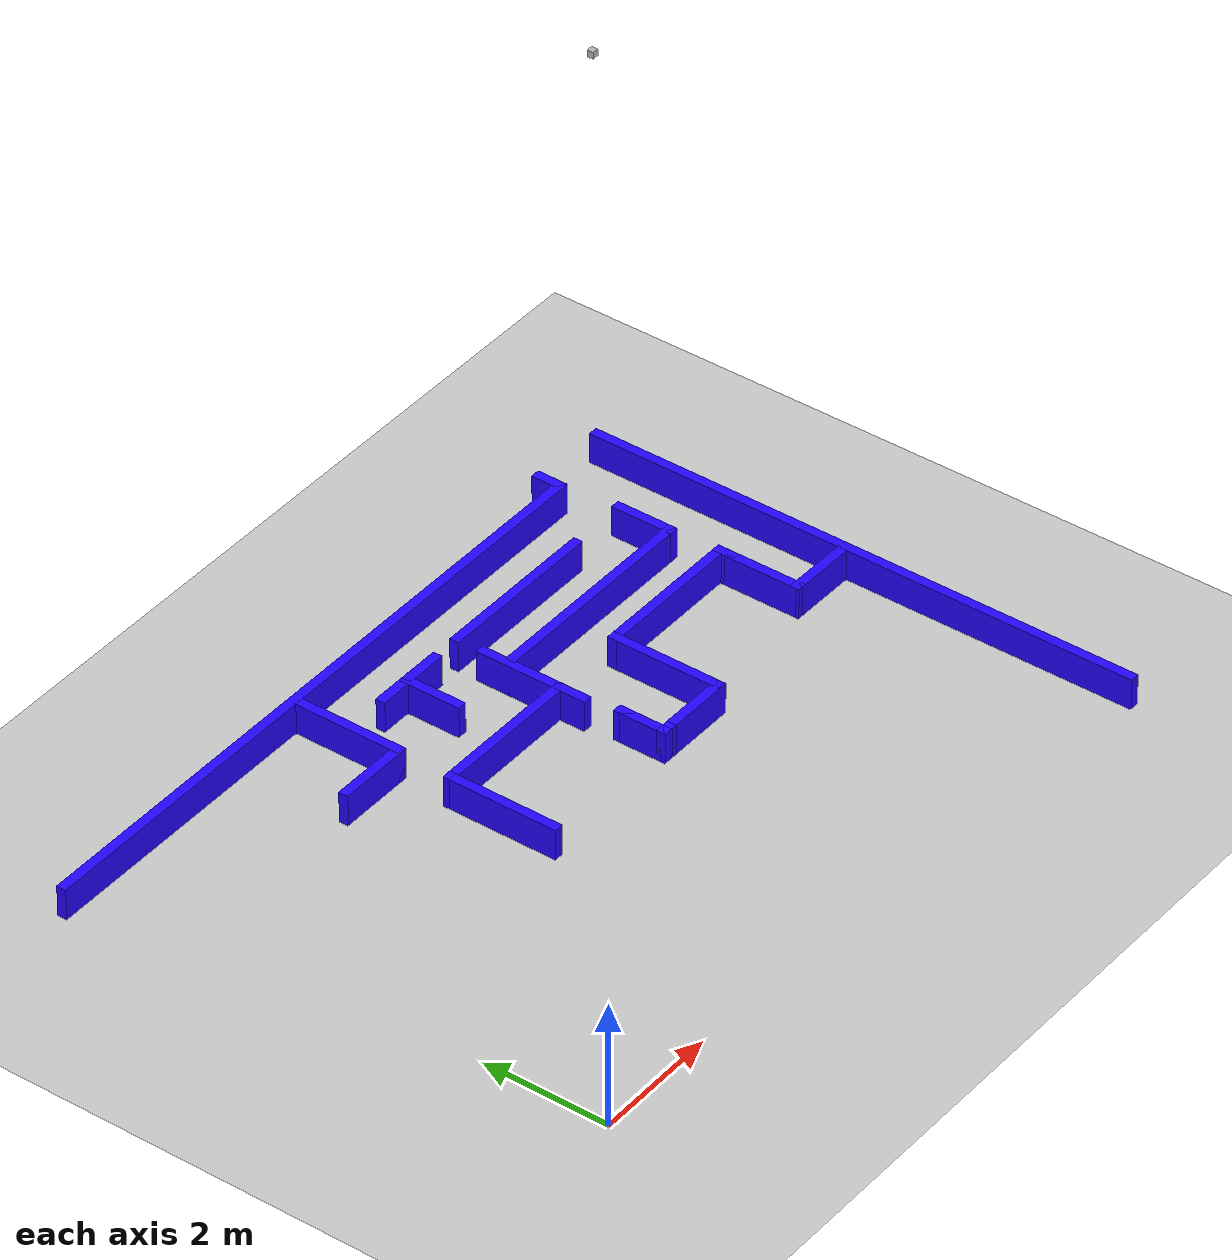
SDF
<sdf version="1.7">
 <world name="default">
  <model name="ground_plane">
   <static>1</static>
   <link name="link">
    <collision name="collision">
     <geometry><plane><normal>0 0 1</normal><size>100 100</size></plane></geometry>
     <surface><friction><ode><mu>100</mu><mu2>50</mu2></ode></friction></surface>
    </collision>
    <visual name="visual">
     <cast_shadows>0</cast_shadows>
     <geometry><plane><normal>0 0 1</normal><size>100 100</size></plane></geometry>
     <material>
      <script><uri>file://media/materials/scripts/gazebo.material</uri><name>Gazebo/Grey</name></script>
     </material>
    </visual>
   </link>
  </model>
  <model name="camera_map">
   <pose>5 4 12 0 1.57 1.57</pose>
   <link name="link">
    <inertial>
     <mass>0.1</mass>
     <inertia>
      <ixx>0.000166667</ixx>
      <iyy>0.000166667</iyy>
      <izz>0.000166667</izz>
      <ixy>0</ixy>
      <ixz>0</ixz>
      <iyz>0</iyz>
     </inertia>
    </inertial>
    <collision name="collision"><geometry><box><size>0.1 0.1 0.1</size></box></geometry></collision>
    <visual name="visual"><geometry><box><size>0.1 0.1 0.1</size></box></geometry></visual>
    <sensor name="camera_map" type="camera">
     <camera>
      <horizontal_fov>1.047</horizontal_fov>
      <image><width>320</width><height>240</height></image>
      <clip><near>0.1</near><far>100</far></clip>
     </camera>
     <always_on>1</always_on>
     <update_rate>30</update_rate>
     <visualize>1</visualize>
     <plugin name="camera_controller" filename="libgazebo_ros_camera.so">
      <alwaysOn>1</alwaysOn>
      <updateRate>0.0</updateRate>
      <cameraName>camera_map</cameraName>
      <imageTopicName>image_raw</imageTopicName>
      <cameraInfoTopicName>camera_info</cameraInfoTopicName>
      <frameName>camera_link</frameName>
      <hackBaseline>0.07</hackBaseline>
      <distortionK1>0.0</distortionK1>
      <distortionK2>0.0</distortionK2>
      <distortionK3>0.0</distortionK3>
      <distortionT1>0.0</distortionT1>
      <distortionT2>0.0</distortionT2>
     </plugin>
    </sensor>
    <gravity>0</gravity>
   </link>
  </model>
  <model name="maze_blue">
   <link name="Wall_2">
    <pose>-0.6185 4.2775 0 0 -0 0</pose>
    <visual name="Wall_2_Visual">
     <pose>0 0 0.25 0 -0 0</pose>
     <geometry><box><size>10.75 0.15 0.5</size></box></geometry>
     <material>
      <script><uri>file://media/materials/scripts/gazebo.material</uri><name>Gazebo/Grey</name></script>
      <ambient>0.14 0.012 1 1</ambient>
      <shader type="pixel"/>
     </material>
     <meta><layer>0</layer></meta>
    </visual>
    <collision name="Wall_2_Collision">
     <pose>0 0 0.25 0 -0 0</pose>
     <geometry><box><size>10.75 0.15 0.5</size></box></geometry>
     <surface>
      <friction>
       <ode><mu>1</mu><mu2>1</mu2><fdir1>0 0 0</fdir1><slip1>0</slip1><slip2>0</slip2></ode>
       <torsional>
        <coefficient>1</coefficient>
        <patch_radius>0</patch_radius>
        <surface_radius>0</surface_radius>
        <use_patch_radius>1</use_patch_radius>
        <ode><slip>0</slip></ode>
       </torsional>
      </friction>
      <bounce><restitution_coefficient>0</restitution_coefficient><threshold>1e+06</threshold></bounce>
      <contact>
       <collide_without_contact>0</collide_without_contact>
       <collide_without_contact_bitmask>1</collide_without_contact_bitmask>
       <collide_bitmask>1</collide_bitmask>
       <ode>
        <soft_cfm>0</soft_cfm>
        <soft_erp>0.2</soft_erp>
        <kp>1e+13</kp>
        <kd>1</kd>
        <max_vel>0.01</max_vel>
        <min_depth>0</min_depth>
       </ode>
       <bullet>
        <split_impulse>1</split_impulse>
        <split_impulse_penetration_threshold>-0.01</split_impulse_penetration_threshold>
        <soft_cfm>0</soft_cfm>
        <soft_erp>0.2</soft_erp>
        <kp>1e+13</kp>
        <kd>1</kd>
       </bullet>
      </contact>
     </surface>
    </collision>
   </link>
   <link name="Wall_3">
    <pose>4.6815 4.4525 0 0 -0 1.5708</pose>
    <visual name="Wall_3_Visual">
     <pose>0 0 0.25 0 -0 0</pose>
     <geometry><box><size>0.5 0.15 0.5</size></box></geometry>
     <material>
      <script><uri>file://media/materials/scripts/gazebo.material</uri><name>Gazebo/Grey</name></script>
      <ambient>0.14 0.012 1 1</ambient>
      <shader type="pixel"/>
     </material>
     <meta><layer>0</layer></meta>
    </visual>
    <collision name="Wall_3_Collision">
     <pose>0 0 0.25 0 -0 0</pose>
     <geometry><box><size>0.5 0.15 0.5</size></box></geometry>
     <surface>
      <friction>
       <ode><mu>1</mu><mu2>1</mu2><fdir1>0 0 0</fdir1><slip1>0</slip1><slip2>0</slip2></ode>
       <torsional>
        <coefficient>1</coefficient>
        <patch_radius>0</patch_radius>
        <surface_radius>0</surface_radius>
        <use_patch_radius>1</use_patch_radius>
        <ode><slip>0</slip></ode>
       </torsional>
      </friction>
      <bounce><restitution_coefficient>0</restitution_coefficient><threshold>1e+06</threshold></bounce>
      <contact>
       <collide_without_contact>0</collide_without_contact>
       <collide_without_contact_bitmask>1</collide_without_contact_bitmask>
       <collide_bitmask>1</collide_bitmask>
       <ode>
        <soft_cfm>0</soft_cfm>
        <soft_erp>0.2</soft_erp>
        <kp>1e+13</kp>
        <kd>1</kd>
        <max_vel>0.01</max_vel>
        <min_depth>0</min_depth>
       </ode>
       <bullet>
        <split_impulse>1</split_impulse>
        <split_impulse_penetration_threshold>-0.01</split_impulse_penetration_threshold>
        <soft_cfm>0</soft_cfm>
        <soft_erp>0.2</soft_erp>
        <kp>1e+13</kp>
        <kd>1</kd>
       </bullet>
      </contact>
     </surface>
    </collision>
   </link>
   <link name="Wall_40">
    <pose>4.8375 0.9405 0 0 -0 1.5708</pose>
    <visual name="Wall_40_Visual">
     <pose>0 0 0.25 0 -0 0</pose>
     <geometry><box><size>1.25 0.15 0.5</size></box></geometry>
     <material>
      <script><uri>file://media/materials/scripts/gazebo.material</uri><name>Gazebo/Grey</name></script>
      <ambient>0.14 0.012 1 1</ambient>
      <shader type="pixel"/>
     </material>
     <meta><layer>0</layer></meta>
    </visual>
    <collision name="Wall_40_Collision">
     <pose>0 0 0.25 0 -0 0</pose>
     <geometry><box><size>1.25 0.15 0.5</size></box></geometry>
     <surface>
      <friction>
       <ode><mu>1</mu><mu2>1</mu2><fdir1>0 0 0</fdir1><slip1>0</slip1><slip2>0</slip2></ode>
       <torsional>
        <coefficient>1</coefficient>
        <patch_radius>0</patch_radius>
        <surface_radius>0</surface_radius>
        <use_patch_radius>1</use_patch_radius>
        <ode><slip>0</slip></ode>
       </torsional>
      </friction>
      <bounce><restitution_coefficient>0</restitution_coefficient><threshold>1e+06</threshold></bounce>
      <contact>
       <collide_without_contact>0</collide_without_contact>
       <collide_without_contact_bitmask>1</collide_without_contact_bitmask>
       <collide_bitmask>1</collide_bitmask>
       <ode>
        <soft_cfm>0</soft_cfm>
        <soft_erp>0.2</soft_erp>
        <kp>1e+13</kp>
        <kd>1</kd>
        <max_vel>0.01</max_vel>
        <min_depth>0</min_depth>
       </ode>
       <bullet>
        <split_impulse>1</split_impulse>
        <split_impulse_penetration_threshold>-0.01</split_impulse_penetration_threshold>
        <soft_cfm>0</soft_cfm>
        <soft_erp>0.2</soft_erp>
        <kp>1e+13</kp>
        <kd>1</kd>
       </bullet>
      </contact>
     </surface>
    </collision>
   </link>
   <link name="Wall_43">
    <pose>3.6625 1.6905 0 0 -0 3.14159</pose>
    <visual name="Wall_43_Visual">
     <pose>0 0 0.25 0 -0 0</pose>
     <geometry><box><size>2.5 0.15 0.5</size></box></geometry>
     <material>
      <script><uri>file://media/materials/scripts/gazebo.material</uri><name>Gazebo/Grey</name></script>
      <ambient>0.14 0.012 1 1</ambient>
      <shader type="pixel"/>
     </material>
     <meta><layer>0</layer></meta>
    </visual>
    <collision name="Wall_43_Collision">
     <pose>0 0 0.25 0 -0 0</pose>
     <geometry><box><size>2.5 0.15 0.5</size></box></geometry>
     <surface>
      <friction>
       <ode><mu>1</mu><mu2>1</mu2><fdir1>0 0 0</fdir1><slip1>0</slip1><slip2>0</slip2></ode>
       <torsional>
        <coefficient>1</coefficient>
        <patch_radius>0</patch_radius>
        <surface_radius>0</surface_radius>
        <use_patch_radius>1</use_patch_radius>
        <ode><slip>0</slip></ode>
       </torsional>
      </friction>
      <bounce><restitution_coefficient>0</restitution_coefficient><threshold>1e+06</threshold></bounce>
      <contact>
       <collide_without_contact>0</collide_without_contact>
       <collide_without_contact_bitmask>1</collide_without_contact_bitmask>
       <collide_bitmask>1</collide_bitmask>
       <ode>
        <soft_cfm>0</soft_cfm>
        <soft_erp>0.2</soft_erp>
        <kp>1e+13</kp>
        <kd>1</kd>
        <max_vel>0.01</max_vel>
        <min_depth>0</min_depth>
       </ode>
       <bullet>
        <split_impulse>1</split_impulse>
        <split_impulse_penetration_threshold>-0.01</split_impulse_penetration_threshold>
        <soft_cfm>0</soft_cfm>
        <soft_erp>0.2</soft_erp>
        <kp>1e+13</kp>
        <kd>1</kd>
       </bullet>
      </contact>
     </surface>
    </collision>
   </link>
   <link name="Wall_44">
    <pose>2.4875 0.8905 0 0 0 -1.5708</pose>
    <visual name="Wall_44_Visual">
     <pose>0 0 0.25 0 -0 0</pose>
     <geometry><box><size>1.75 0.15 0.5</size></box></geometry>
     <material>
      <script><uri>file://media/materials/scripts/gazebo.material</uri><name>Gazebo/Grey</name></script>
      <ambient>0.14 0.012 1 1</ambient>
      <shader type="pixel"/>
     </material>
     <meta><layer>0</layer></meta>
    </visual>
    <collision name="Wall_44_Collision">
     <pose>0 0 0.25 0 -0 0</pose>
     <geometry><box><size>1.75 0.15 0.5</size></box></geometry>
     <surface>
      <friction>
       <ode><mu>1</mu><mu2>1</mu2><fdir1>0 0 0</fdir1><slip1>0</slip1><slip2>0</slip2></ode>
       <torsional>
        <coefficient>1</coefficient>
        <patch_radius>0</patch_radius>
        <surface_radius>0</surface_radius>
        <use_patch_radius>1</use_patch_radius>
        <ode><slip>0</slip></ode>
       </torsional>
      </friction>
      <bounce><restitution_coefficient>0</restitution_coefficient><threshold>1e+06</threshold></bounce>
      <contact>
       <collide_without_contact>0</collide_without_contact>
       <collide_without_contact_bitmask>1</collide_without_contact_bitmask>
       <collide_bitmask>1</collide_bitmask>
       <ode>
        <soft_cfm>0</soft_cfm>
        <soft_erp>0.2</soft_erp>
        <kp>1e+13</kp>
        <kd>1</kd>
        <max_vel>0.01</max_vel>
        <min_depth>0</min_depth>
       </ode>
       <bullet>
        <split_impulse>1</split_impulse>
        <split_impulse_penetration_threshold>-0.01</split_impulse_penetration_threshold>
        <soft_cfm>0</soft_cfm>
        <soft_erp>0.2</soft_erp>
        <kp>1e+13</kp>
        <kd>1</kd>
       </bullet>
      </contact>
     </surface>
    </collision>
   </link>
   <link name="Wall_45">
    <pose>2.4875 0.0405 0 0 0 -1.5708</pose>
    <visual name="Wall_45_Visual">
     <pose>0 0 0.25 0 -0 0</pose>
     <geometry><box><size>0.25 0.15 0.5</size></box></geometry>
     <material>
      <script><uri>file://media/materials/scripts/gazebo.material</uri><name>Gazebo/Grey</name></script>
      <ambient>0.14 0.012 1 1</ambient>
      <shader type="pixel"/>
     </material>
     <meta><layer>0</layer></meta>
    </visual>
    <collision name="Wall_45_Collision">
     <pose>0 0 0.25 0 -0 0</pose>
     <geometry><box><size>0.25 0.15 0.5</size></box></geometry>
     <surface>
      <friction>
       <ode><mu>1</mu><mu2>1</mu2><fdir1>0 0 0</fdir1><slip1>0</slip1><slip2>0</slip2></ode>
       <torsional>
        <coefficient>1</coefficient>
        <patch_radius>0</patch_radius>
        <surface_radius>0</surface_radius>
        <use_patch_radius>1</use_patch_radius>
        <ode><slip>0</slip></ode>
       </torsional>
      </friction>
      <bounce><restitution_coefficient>0</restitution_coefficient><threshold>1e+06</threshold></bounce>
      <contact>
       <collide_without_contact>0</collide_without_contact>
       <collide_without_contact_bitmask>1</collide_without_contact_bitmask>
       <collide_bitmask>1</collide_bitmask>
       <ode>
        <soft_cfm>0</soft_cfm>
        <soft_erp>0.2</soft_erp>
        <kp>1e+13</kp>
        <kd>1</kd>
        <max_vel>0.01</max_vel>
        <min_depth>0</min_depth>
       </ode>
       <bullet>
        <split_impulse>1</split_impulse>
        <split_impulse_penetration_threshold>-0.01</split_impulse_penetration_threshold>
        <soft_cfm>0</soft_cfm>
        <soft_erp>0.2</soft_erp>
        <kp>1e+13</kp>
        <kd>1</kd>
       </bullet>
      </contact>
     </surface>
    </collision>
   </link>
   <link name="Wall_46">
    <pose>1.9375 -0.0095 0 0 -0 3.14159</pose>
    <visual name="Wall_46_Visual">
     <pose>0 0 0.25 0 -0 0</pose>
     <geometry><box><size>1.25 0.15 0.5</size></box></geometry>
     <material>
      <script><uri>file://media/materials/scripts/gazebo.material</uri><name>Gazebo/Grey</name></script>
      <ambient>0.14 0.012 1 1</ambient>
      <shader type="pixel"/>
     </material>
     <meta><layer>0</layer></meta>
    </visual>
    <collision name="Wall_46_Collision">
     <pose>0 0 0.25 0 -0 0</pose>
     <geometry><box><size>1.25 0.15 0.5</size></box></geometry>
     <surface>
      <friction>
       <ode><mu>1</mu><mu2>1</mu2><fdir1>0 0 0</fdir1><slip1>0</slip1><slip2>0</slip2></ode>
       <torsional>
        <coefficient>1</coefficient>
        <patch_radius>0</patch_radius>
        <surface_radius>0</surface_radius>
        <use_patch_radius>1</use_patch_radius>
        <ode><slip>0</slip></ode>
       </torsional>
      </friction>
      <bounce><restitution_coefficient>0</restitution_coefficient><threshold>1e+06</threshold></bounce>
      <contact>
       <collide_without_contact>0</collide_without_contact>
       <collide_without_contact_bitmask>1</collide_without_contact_bitmask>
       <collide_bitmask>1</collide_bitmask>
       <ode>
        <soft_cfm>0</soft_cfm>
        <soft_erp>0.2</soft_erp>
        <kp>1e+13</kp>
        <kd>1</kd>
        <max_vel>0.01</max_vel>
        <min_depth>0</min_depth>
       </ode>
       <bullet>
        <split_impulse>1</split_impulse>
        <split_impulse_penetration_threshold>-0.01</split_impulse_penetration_threshold>
        <soft_cfm>0</soft_cfm>
        <soft_erp>0.2</soft_erp>
        <kp>1e+13</kp>
        <kd>1</kd>
       </bullet>
      </contact>
     </surface>
    </collision>
   </link>
   <link name="Wall_47">
    <pose>1.3375 -0.0095 0 0 -0 3.14159</pose>
    <visual name="Wall_47_Visual">
     <pose>0 0 0.25 0 -0 0</pose>
     <geometry><box><size>0.25 0.15 0.5</size></box></geometry>
     <material>
      <script><uri>file://media/materials/scripts/gazebo.material</uri><name>Gazebo/Grey</name></script>
      <ambient>0.14 0.012 1 1</ambient>
      <shader type="pixel"/>
     </material>
     <meta><layer>0</layer></meta>
    </visual>
    <collision name="Wall_47_Collision">
     <pose>0 0 0.25 0 -0 0</pose>
     <geometry><box><size>0.25 0.15 0.5</size></box></geometry>
     <surface>
      <friction>
       <ode><mu>1</mu><mu2>1</mu2><fdir1>0 0 0</fdir1><slip1>0</slip1><slip2>0</slip2></ode>
       <torsional>
        <coefficient>1</coefficient>
        <patch_radius>0</patch_radius>
        <surface_radius>0</surface_radius>
        <use_patch_radius>1</use_patch_radius>
        <ode><slip>0</slip></ode>
       </torsional>
      </friction>
      <bounce><restitution_coefficient>0</restitution_coefficient><threshold>1e+06</threshold></bounce>
      <contact>
       <collide_without_contact>0</collide_without_contact>
       <collide_without_contact_bitmask>1</collide_without_contact_bitmask>
       <collide_bitmask>1</collide_bitmask>
       <ode>
        <soft_cfm>0</soft_cfm>
        <soft_erp>0.2</soft_erp>
        <kp>1e+13</kp>
        <kd>1</kd>
        <max_vel>0.01</max_vel>
        <min_depth>0</min_depth>
       </ode>
       <bullet>
        <split_impulse>1</split_impulse>
        <split_impulse_penetration_threshold>-0.01</split_impulse_penetration_threshold>
        <soft_cfm>0</soft_cfm>
        <soft_erp>0.2</soft_erp>
        <kp>1e+13</kp>
        <kd>1</kd>
       </bullet>
      </contact>
     </surface>
    </collision>
   </link>
   <link name="Wall_63">
    <pose>-1.1595 0.7495 0 0 -0 1.5708</pose>
    <visual name="Wall_63_Visual">
     <pose>0 0 0.25 0 -0 0</pose>
     <geometry><box><size>1.75 0.15 0.5</size></box></geometry>
     <material>
      <script><uri>file://media/materials/scripts/gazebo.material</uri><name>Gazebo/Grey</name></script>
      <ambient>0.14 0.012 1 1</ambient>
      <shader type="pixel"/>
     </material>
     <meta><layer>0</layer></meta>
    </visual>
    <collision name="Wall_63_Collision">
     <pose>0 0 0.25 0 -0 0</pose>
     <geometry><box><size>1.75 0.15 0.5</size></box></geometry>
     <surface>
      <friction>
       <ode><mu>1</mu><mu2>1</mu2><fdir1>0 0 0</fdir1><slip1>0</slip1><slip2>0</slip2></ode>
       <torsional>
        <coefficient>1</coefficient>
        <patch_radius>0</patch_radius>
        <surface_radius>0</surface_radius>
        <use_patch_radius>1</use_patch_radius>
        <ode><slip>0</slip></ode>
       </torsional>
      </friction>
      <bounce><restitution_coefficient>0</restitution_coefficient><threshold>1e+06</threshold></bounce>
      <contact>
       <collide_without_contact>0</collide_without_contact>
       <collide_without_contact_bitmask>1</collide_without_contact_bitmask>
       <collide_bitmask>1</collide_bitmask>
       <ode>
        <soft_cfm>0</soft_cfm>
        <soft_erp>0.2</soft_erp>
        <kp>1e+13</kp>
        <kd>1</kd>
        <max_vel>0.01</max_vel>
        <min_depth>0</min_depth>
       </ode>
       <bullet>
        <split_impulse>1</split_impulse>
        <split_impulse_penetration_threshold>-0.01</split_impulse_penetration_threshold>
        <soft_cfm>0</soft_cfm>
        <soft_erp>0.2</soft_erp>
        <kp>1e+13</kp>
        <kd>1</kd>
       </bullet>
      </contact>
     </surface>
    </collision>
   </link>
   <link name="Wall_64">
    <pose>-1.1595 1.5995 0 0 -0 1.5708</pose>
    <visual name="Wall_64_Visual">
     <pose>0 0 0.25 0 -0 0</pose>
     <geometry><box><size>0.25 0.15 0.5</size></box></geometry>
     <material>
      <script><uri>file://media/materials/scripts/gazebo.material</uri><name>Gazebo/Grey</name></script>
      <ambient>0.14 0.012 1 1</ambient>
      <shader type="pixel"/>
     </material>
     <meta><layer>0</layer></meta>
    </visual>
    <collision name="Wall_64_Collision">
     <pose>0 0 0.25 0 -0 0</pose>
     <geometry><box><size>0.25 0.15 0.5</size></box></geometry>
     <surface>
      <friction>
       <ode><mu>1</mu><mu2>1</mu2><fdir1>0 0 0</fdir1><slip1>0</slip1><slip2>0</slip2></ode>
       <torsional>
        <coefficient>1</coefficient>
        <patch_radius>0</patch_radius>
        <surface_radius>0</surface_radius>
        <use_patch_radius>1</use_patch_radius>
        <ode><slip>0</slip></ode>
       </torsional>
      </friction>
      <bounce><restitution_coefficient>0</restitution_coefficient><threshold>1e+06</threshold></bounce>
      <contact>
       <collide_without_contact>0</collide_without_contact>
       <collide_without_contact_bitmask>1</collide_without_contact_bitmask>
       <collide_bitmask>1</collide_bitmask>
       <ode>
        <soft_cfm>0</soft_cfm>
        <soft_erp>0.2</soft_erp>
        <kp>1e+13</kp>
        <kd>1</kd>
        <max_vel>0.01</max_vel>
        <min_depth>0</min_depth>
       </ode>
       <bullet>
        <split_impulse>1</split_impulse>
        <split_impulse_penetration_threshold>-0.01</split_impulse_penetration_threshold>
        <soft_cfm>0</soft_cfm>
        <soft_erp>0.2</soft_erp>
        <kp>1e+13</kp>
        <kd>1</kd>
       </bullet>
      </contact>
     </surface>
    </collision>
   </link>
   <link name="Wall_65">
    <pose>0.0155 1.6495 0 0 -0 0</pose>
    <visual name="Wall_65_Visual">
     <pose>0 0 0.25 0 -0 0</pose>
     <geometry><box><size>2.5 0.15 0.5</size></box></geometry>
     <material>
      <script><uri>file://media/materials/scripts/gazebo.material</uri><name>Gazebo/Grey</name></script>
      <ambient>0.14 0.012 1 1</ambient>
      <shader type="pixel"/>
     </material>
     <meta><layer>0</layer></meta>
    </visual>
    <collision name="Wall_65_Collision">
     <pose>0 0 0.25 0 -0 0</pose>
     <geometry><box><size>2.5 0.15 0.5</size></box></geometry>
     <surface>
      <friction>
       <ode><mu>1</mu><mu2>1</mu2><fdir1>0 0 0</fdir1><slip1>0</slip1><slip2>0</slip2></ode>
       <torsional>
        <coefficient>1</coefficient>
        <patch_radius>0</patch_radius>
        <surface_radius>0</surface_radius>
        <use_patch_radius>1</use_patch_radius>
        <ode><slip>0</slip></ode>
       </torsional>
      </friction>
      <bounce><restitution_coefficient>0</restitution_coefficient><threshold>1e+06</threshold></bounce>
      <contact>
       <collide_without_contact>0</collide_without_contact>
       <collide_without_contact_bitmask>1</collide_without_contact_bitmask>
       <collide_bitmask>1</collide_bitmask>
       <ode>
        <soft_cfm>0</soft_cfm>
        <soft_erp>0.2</soft_erp>
        <kp>1e+13</kp>
        <kd>1</kd>
        <max_vel>0.01</max_vel>
        <min_depth>0</min_depth>
       </ode>
       <bullet>
        <split_impulse>1</split_impulse>
        <split_impulse_penetration_threshold>-0.01</split_impulse_penetration_threshold>
        <soft_cfm>0</soft_cfm>
        <soft_erp>0.2</soft_erp>
        <kp>1e+13</kp>
        <kd>1</kd>
       </bullet>
      </contact>
     </surface>
    </collision>
   </link>
   <link name="Wall_66">
    <pose>1.1905 2.0745 0 0 -0 1.5708</pose>
    <visual name="Wall_66_Visual">
     <pose>0 0 0.25 0 -0 0</pose>
     <geometry><box><size>1.8 0.15 0.5</size></box></geometry>
     <material>
      <script><uri>file://media/materials/scripts/gazebo.material</uri><name>Gazebo/Grey</name></script>
      <ambient>0.14 0.012 1 1</ambient>
      <shader type="pixel"/>
     </material>
     <meta><layer>0</layer></meta>
    </visual>
    <collision name="Wall_66_Collision">
     <pose>0 0 0.25 0 -0 0</pose>
     <geometry><box><size>1.8 0.15 0.5</size></box></geometry>
     <surface>
      <friction>
       <ode><mu>1</mu><mu2>1</mu2><fdir1>0 0 0</fdir1><slip1>0</slip1><slip2>0</slip2></ode>
       <torsional>
        <coefficient>1</coefficient>
        <patch_radius>0</patch_radius>
        <surface_radius>0</surface_radius>
        <use_patch_radius>1</use_patch_radius>
        <ode><slip>0</slip></ode>
       </torsional>
      </friction>
      <bounce><restitution_coefficient>0</restitution_coefficient><threshold>1e+06</threshold></bounce>
      <contact>
       <collide_without_contact>0</collide_without_contact>
       <collide_without_contact_bitmask>1</collide_without_contact_bitmask>
       <collide_bitmask>1</collide_bitmask>
       <ode>
        <soft_cfm>0</soft_cfm>
        <soft_erp>0.2</soft_erp>
        <kp>1e+13</kp>
        <kd>1</kd>
        <max_vel>0.01</max_vel>
        <min_depth>0</min_depth>
       </ode>
       <bullet>
        <split_impulse>1</split_impulse>
        <split_impulse_penetration_threshold>-0.01</split_impulse_penetration_threshold>
        <soft_cfm>0</soft_cfm>
        <soft_erp>0.2</soft_erp>
        <kp>1e+13</kp>
        <kd>1</kd>
       </bullet>
      </contact>
     </surface>
    </collision>
   </link>
   <link name="Wall_67">
    <pose>2.9905 2.4995 0 0 -0 0</pose>
    <visual name="Wall_67_Visual">
     <pose>0 0 0.25 0 -0 0</pose>
     <geometry><box><size>3.75 0.15 0.5</size></box></geometry>
     <material>
      <script><uri>file://media/materials/scripts/gazebo.material</uri><name>Gazebo/Grey</name></script>
      <ambient>0.14 0.012 1 1</ambient>
      <shader type="pixel"/>
     </material>
     <meta><layer>0</layer></meta>
    </visual>
    <collision name="Wall_67_Collision">
     <pose>0 0 0.25 0 -0 0</pose>
     <geometry><box><size>3.75 0.15 0.5</size></box></geometry>
     <surface>
      <friction>
       <ode><mu>1</mu><mu2>1</mu2><fdir1>0 0 0</fdir1><slip1>0</slip1><slip2>0</slip2></ode>
       <torsional>
        <coefficient>1</coefficient>
        <patch_radius>0</patch_radius>
        <surface_radius>0</surface_radius>
        <use_patch_radius>1</use_patch_radius>
        <ode><slip>0</slip></ode>
       </torsional>
      </friction>
      <bounce><restitution_coefficient>0</restitution_coefficient><threshold>1e+06</threshold></bounce>
      <contact>
       <collide_without_contact>0</collide_without_contact>
       <collide_without_contact_bitmask>1</collide_without_contact_bitmask>
       <collide_bitmask>1</collide_bitmask>
       <ode>
        <soft_cfm>0</soft_cfm>
        <soft_erp>0.2</soft_erp>
        <kp>1e+13</kp>
        <kd>1</kd>
        <max_vel>0.01</max_vel>
        <min_depth>0</min_depth>
       </ode>
       <bullet>
        <split_impulse>1</split_impulse>
        <split_impulse_penetration_threshold>-0.01</split_impulse_penetration_threshold>
        <soft_cfm>0</soft_cfm>
        <soft_erp>0.2</soft_erp>
        <kp>1e+13</kp>
        <kd>1</kd>
       </bullet>
      </contact>
     </surface>
    </collision>
   </link>
   <link name="Wall_68">
    <pose>4.7905 2.9245 0 0 -0 1.5708</pose>
    <visual name="Wall_68_Visual">
     <pose>0 0 0.25 0 -0 0</pose>
     <geometry><box><size>1 0.15 0.5</size></box></geometry>
     <material>
      <script><uri>file://media/materials/scripts/gazebo.material</uri><name>Gazebo/Grey</name></script>
      <ambient>0.14 0.012 1 1</ambient>
      <shader type="pixel"/>
     </material>
     <meta><layer>0</layer></meta>
    </visual>
    <collision name="Wall_68_Collision">
     <pose>0 0 0.25 0 -0 0</pose>
     <geometry><box><size>1 0.15 0.5</size></box></geometry>
     <surface>
      <friction>
       <ode><mu>1</mu><mu2>1</mu2><fdir1>0 0 0</fdir1><slip1>0</slip1><slip2>0</slip2></ode>
       <torsional>
        <coefficient>1</coefficient>
        <patch_radius>0</patch_radius>
        <surface_radius>0</surface_radius>
        <use_patch_radius>1</use_patch_radius>
        <ode><slip>0</slip></ode>
       </torsional>
      </friction>
      <bounce><restitution_coefficient>0</restitution_coefficient><threshold>1e+06</threshold></bounce>
      <contact>
       <collide_without_contact>0</collide_without_contact>
       <collide_without_contact_bitmask>1</collide_without_contact_bitmask>
       <collide_bitmask>1</collide_bitmask>
       <ode>
        <soft_cfm>0</soft_cfm>
        <soft_erp>0.2</soft_erp>
        <kp>1e+13</kp>
        <kd>1</kd>
        <max_vel>0.01</max_vel>
        <min_depth>0</min_depth>
       </ode>
       <bullet>
        <split_impulse>1</split_impulse>
        <split_impulse_penetration_threshold>-0.01</split_impulse_penetration_threshold>
        <soft_cfm>0</soft_cfm>
        <soft_erp>0.2</soft_erp>
        <kp>1e+13</kp>
        <kd>1</kd>
       </bullet>
      </contact>
     </surface>
    </collision>
   </link>
   <link name="Wall_69">
    <pose>2.4905 3.3495 0 0 -0 3.14159</pose>
    <visual name="Wall_69_Visual">
     <pose>0 0 0.25 0 -0 0</pose>
     <geometry><box><size>2.75 0.15 0.5</size></box></geometry>
     <material>
      <script><uri>file://media/materials/scripts/gazebo.material</uri><name>Gazebo/Grey</name></script>
      <ambient>0.14 0.012 1 1</ambient>
      <shader type="pixel"/>
     </material>
     <meta><layer>0</layer></meta>
    </visual>
    <collision name="Wall_69_Collision">
     <pose>0 0 0.25 0 -0 0</pose>
     <geometry><box><size>2.75 0.15 0.5</size></box></geometry>
     <surface>
      <friction>
       <ode><mu>1</mu><mu2>1</mu2><fdir1>0 0 0</fdir1><slip1>0</slip1><slip2>0</slip2></ode>
       <torsional>
        <coefficient>1</coefficient>
        <patch_radius>0</patch_radius>
        <surface_radius>0</surface_radius>
        <use_patch_radius>1</use_patch_radius>
        <ode><slip>0</slip></ode>
       </torsional>
      </friction>
      <bounce><restitution_coefficient>0</restitution_coefficient><threshold>1e+06</threshold></bounce>
      <contact>
       <collide_without_contact>0</collide_without_contact>
       <collide_without_contact_bitmask>1</collide_without_contact_bitmask>
       <collide_bitmask>1</collide_bitmask>
       <ode>
        <soft_cfm>0</soft_cfm>
        <soft_erp>0.2</soft_erp>
        <kp>1e+13</kp>
        <kd>1</kd>
        <max_vel>0.01</max_vel>
        <min_depth>0</min_depth>
       </ode>
       <bullet>
        <split_impulse>1</split_impulse>
        <split_impulse_penetration_threshold>-0.01</split_impulse_penetration_threshold>
        <soft_cfm>0</soft_cfm>
        <soft_erp>0.2</soft_erp>
        <kp>1e+13</kp>
        <kd>1</kd>
       </bullet>
      </contact>
     </surface>
    </collision>
   </link>
   <link name="Wall_7">
    <pose>5.9185 0.1475 0 0 -0 1.5708</pose>
    <visual name="Wall_7_Visual">
     <pose>0 0 0.25 0 -0 0</pose>
     <geometry><box><size>9 0.15 0.5</size></box></geometry>
     <material>
      <script><uri>file://media/materials/scripts/gazebo.material</uri><name>Gazebo/Grey</name></script>
      <ambient>0.14 0.012 1 1</ambient>
      <shader type="pixel"/>
     </material>
     <meta><layer>0</layer></meta>
    </visual>
    <collision name="Wall_7_Collision">
     <pose>0 0 0.25 0 -0 0</pose>
     <geometry><box><size>9 0.15 0.5</size></box></geometry>
     <surface>
      <friction>
       <ode><mu>1</mu><mu2>1</mu2><fdir1>0 0 0</fdir1><slip1>0</slip1><slip2>0</slip2></ode>
       <torsional>
        <coefficient>1</coefficient>
        <patch_radius>0</patch_radius>
        <surface_radius>0</surface_radius>
        <use_patch_radius>1</use_patch_radius>
        <ode><slip>0</slip></ode>
       </torsional>
      </friction>
      <bounce><restitution_coefficient>0</restitution_coefficient><threshold>1e+06</threshold></bounce>
      <contact>
       <collide_without_contact>0</collide_without_contact>
       <collide_without_contact_bitmask>1</collide_without_contact_bitmask>
       <collide_bitmask>1</collide_bitmask>
       <ode>
        <soft_cfm>0</soft_cfm>
        <soft_erp>0.2</soft_erp>
        <kp>1e+13</kp>
        <kd>1</kd>
        <max_vel>0.01</max_vel>
        <min_depth>0</min_depth>
       </ode>
       <bullet>
        <split_impulse>1</split_impulse>
        <split_impulse_penetration_threshold>-0.01</split_impulse_penetration_threshold>
        <soft_cfm>0</soft_cfm>
        <soft_erp>0.2</soft_erp>
        <kp>1e+13</kp>
        <kd>1</kd>
       </bullet>
      </contact>
     </surface>
    </collision>
   </link>
   <link name="Wall_70">
    <pose>0.1405 3.3495 0 0 -0 3.14159</pose>
    <visual name="Wall_70_Visual">
     <pose>0 0 0.25 0 -0 0</pose>
     <geometry><box><size>1.25 0.15 0.5</size></box></geometry>
     <material>
      <script><uri>file://media/materials/scripts/gazebo.material</uri><name>Gazebo/Grey</name></script>
      <ambient>0.14 0.012 1 1</ambient>
      <shader type="pixel"/>
     </material>
     <meta><layer>0</layer></meta>
    </visual>
    <collision name="Wall_70_Collision">
     <pose>0 0 0.25 0 -0 0</pose>
     <geometry><box><size>1.25 0.15 0.5</size></box></geometry>
     <surface>
      <friction>
       <ode><mu>1</mu><mu2>1</mu2><fdir1>0 0 0</fdir1><slip1>0</slip1><slip2>0</slip2></ode>
       <torsional>
        <coefficient>1</coefficient>
        <patch_radius>0</patch_radius>
        <surface_radius>0</surface_radius>
        <use_patch_radius>1</use_patch_radius>
        <ode><slip>0</slip></ode>
       </torsional>
      </friction>
      <bounce><restitution_coefficient>0</restitution_coefficient><threshold>1e+06</threshold></bounce>
      <contact>
       <collide_without_contact>0</collide_without_contact>
       <collide_without_contact_bitmask>1</collide_without_contact_bitmask>
       <collide_bitmask>1</collide_bitmask>
       <ode>
        <soft_cfm>0</soft_cfm>
        <soft_erp>0.2</soft_erp>
        <kp>1e+13</kp>
        <kd>1</kd>
        <max_vel>0.01</max_vel>
        <min_depth>0</min_depth>
       </ode>
       <bullet>
        <split_impulse>1</split_impulse>
        <split_impulse_penetration_threshold>-0.01</split_impulse_penetration_threshold>
        <soft_cfm>0</soft_cfm>
        <soft_erp>0.2</soft_erp>
        <kp>1e+13</kp>
        <kd>1</kd>
       </bullet>
      </contact>
     </surface>
    </collision>
   </link>
   <link name="Wall_71">
    <pose>0.0905 2.9245 0 0 0 -1.5708</pose>
    <visual name="Wall_71_Visual">
     <pose>0 0 0.25 0 -0 0</pose>
     <geometry><box><size>1 0.15 0.5</size></box></geometry>
     <material>
      <script><uri>file://media/materials/scripts/gazebo.material</uri><name>Gazebo/Grey</name></script>
      <ambient>0.14 0.012 1 1</ambient>
      <shader type="pixel"/>
     </material>
     <meta><layer>0</layer></meta>
    </visual>
    <collision name="Wall_71_Collision">
     <pose>0 0 0.25 0 -0 0</pose>
     <geometry><box><size>1 0.15 0.5</size></box></geometry>
     <surface>
      <friction>
       <ode><mu>1</mu><mu2>1</mu2><fdir1>0 0 0</fdir1><slip1>0</slip1><slip2>0</slip2></ode>
       <torsional>
        <coefficient>1</coefficient>
        <patch_radius>0</patch_radius>
        <surface_radius>0</surface_radius>
        <use_patch_radius>1</use_patch_radius>
        <ode><slip>0</slip></ode>
       </torsional>
      </friction>
      <bounce><restitution_coefficient>0</restitution_coefficient><threshold>1e+06</threshold></bounce>
      <contact>
       <collide_without_contact>0</collide_without_contact>
       <collide_without_contact_bitmask>1</collide_without_contact_bitmask>
       <collide_bitmask>1</collide_bitmask>
       <ode>
        <soft_cfm>0</soft_cfm>
        <soft_erp>0.2</soft_erp>
        <kp>1e+13</kp>
        <kd>1</kd>
        <max_vel>0.01</max_vel>
        <min_depth>0</min_depth>
       </ode>
       <bullet>
        <split_impulse>1</split_impulse>
        <split_impulse_penetration_threshold>-0.01</split_impulse_penetration_threshold>
        <soft_cfm>0</soft_cfm>
        <soft_erp>0.2</soft_erp>
        <kp>1e+13</kp>
        <kd>1</kd>
       </bullet>
      </contact>
     </surface>
    </collision>
   </link>
   <link name="Wall_75">
    <pose>-1.1325 3.3425 0 0 0 -1.5708</pose>
    <visual name="Wall_75_Visual">
     <pose>0 0 0.25 0 -0 0</pose>
     <geometry><box><size>1.75 0.15 0.5</size></box></geometry>
     <material>
      <script><uri>file://media/materials/scripts/gazebo.material</uri><name>Gazebo/Grey</name></script>
      <ambient>0.14 0.012 1 1</ambient>
      <shader type="pixel"/>
     </material>
     <meta><layer>0</layer></meta>
    </visual>
    <collision name="Wall_75_Collision">
     <pose>0 0 0.25 0 -0 0</pose>
     <geometry><box><size>1.75 0.15 0.5</size></box></geometry>
     <surface>
      <friction>
       <ode><mu>1</mu><mu2>1</mu2><fdir1>0 0 0</fdir1><slip1>0</slip1><slip2>0</slip2></ode>
       <torsional>
        <coefficient>1</coefficient>
        <patch_radius>0</patch_radius>
        <surface_radius>0</surface_radius>
        <use_patch_radius>1</use_patch_radius>
        <ode><slip>0</slip></ode>
       </torsional>
      </friction>
      <bounce><restitution_coefficient>0</restitution_coefficient><threshold>1e+06</threshold></bounce>
      <contact>
       <collide_without_contact>0</collide_without_contact>
       <collide_without_contact_bitmask>1</collide_without_contact_bitmask>
       <collide_bitmask>1</collide_bitmask>
       <ode>
        <soft_cfm>0</soft_cfm>
        <soft_erp>0.2</soft_erp>
        <kp>1e+13</kp>
        <kd>1</kd>
        <max_vel>0.01</max_vel>
        <min_depth>0</min_depth>
       </ode>
       <bullet>
        <split_impulse>1</split_impulse>
        <split_impulse_penetration_threshold>-0.01</split_impulse_penetration_threshold>
        <soft_cfm>0</soft_cfm>
        <soft_erp>0.2</soft_erp>
        <kp>1e+13</kp>
        <kd>1</kd>
       </bullet>
      </contact>
     </surface>
    </collision>
   </link>
   <link name="Wall_76">
    <pose>-1.6825 2.5425 0 0 -0 3.14159</pose>
    <visual name="Wall_76_Visual">
     <pose>0 0 0.25 0 -0 0</pose>
     <geometry><box><size>1.25 0.15 0.5</size></box></geometry>
     <material>
      <script><uri>file://media/materials/scripts/gazebo.material</uri><name>Gazebo/Grey</name></script>
      <ambient>0.14 0.012 1 1</ambient>
      <shader type="pixel"/>
     </material>
     <meta><layer>0</layer></meta>
    </visual>
    <collision name="Wall_76_Collision">
     <pose>0 0 0.25 0 -0 0</pose>
     <geometry><box><size>1.25 0.15 0.5</size></box></geometry>
     <surface>
      <friction>
       <ode><mu>1</mu><mu2>1</mu2><fdir1>0 0 0</fdir1><slip1>0</slip1><slip2>0</slip2></ode>
       <torsional>
        <coefficient>1</coefficient>
        <patch_radius>0</patch_radius>
        <surface_radius>0</surface_radius>
        <use_patch_radius>1</use_patch_radius>
        <ode><slip>0</slip></ode>
       </torsional>
      </friction>
      <bounce><restitution_coefficient>0</restitution_coefficient><threshold>1e+06</threshold></bounce>
      <contact>
       <collide_without_contact>0</collide_without_contact>
       <collide_without_contact_bitmask>1</collide_without_contact_bitmask>
       <collide_bitmask>1</collide_bitmask>
       <ode>
        <soft_cfm>0</soft_cfm>
        <soft_erp>0.2</soft_erp>
        <kp>1e+13</kp>
        <kd>1</kd>
        <max_vel>0.01</max_vel>
        <min_depth>0</min_depth>
       </ode>
       <bullet>
        <split_impulse>1</split_impulse>
        <split_impulse_penetration_threshold>-0.01</split_impulse_penetration_threshold>
        <soft_cfm>0</soft_cfm>
        <soft_erp>0.2</soft_erp>
        <kp>1e+13</kp>
        <kd>1</kd>
       </bullet>
      </contact>
     </surface>
    </collision>
   </link>
   <link name="Wall_94">
    <pose>1.2875 0.2905 0 0 -0 1.5708</pose>
    <visual name="Wall_94_Visual">
     <pose>0 0 0.25 0 -0 0</pose>
     <geometry><box><size>0.75 0.15 0.5</size></box></geometry>
     <material>
      <script><uri>file://media/materials/scripts/gazebo.material</uri><name>Gazebo/Grey</name></script>
      <ambient>0.14 0.012 1 1</ambient>
      <shader type="pixel"/>
     </material>
     <meta><layer>0</layer></meta>
    </visual>
    <collision name="Wall_94_Collision">
     <pose>0 0 0.25 0 -0 0</pose>
     <geometry><box><size>0.75 0.15 0.5</size></box></geometry>
     <surface>
      <friction>
       <ode><mu>1</mu><mu2>1</mu2><fdir1>0 0 0</fdir1><slip1>0</slip1><slip2>0</slip2></ode>
       <torsional>
        <coefficient>1</coefficient>
        <patch_radius>0</patch_radius>
        <surface_radius>0</surface_radius>
        <use_patch_radius>1</use_patch_radius>
        <ode><slip>0</slip></ode>
       </torsional>
      </friction>
      <bounce><restitution_coefficient>0</restitution_coefficient><threshold>1e+06</threshold></bounce>
      <contact>
       <collide_without_contact>0</collide_without_contact>
       <collide_without_contact_bitmask>1</collide_without_contact_bitmask>
       <collide_bitmask>1</collide_bitmask>
       <ode>
        <soft_cfm>0</soft_cfm>
        <soft_erp>0.2</soft_erp>
        <kp>1e+13</kp>
        <kd>1</kd>
        <max_vel>0.01</max_vel>
        <min_depth>0</min_depth>
       </ode>
       <bullet>
        <split_impulse>1</split_impulse>
        <split_impulse_penetration_threshold>-0.01</split_impulse_penetration_threshold>
        <soft_cfm>0</soft_cfm>
        <soft_erp>0.2</soft_erp>
        <kp>1e+13</kp>
        <kd>1</kd>
       </bullet>
      </contact>
     </surface>
    </collision>
   </link>
   <link name="Wall_95">
    <pose>1.2875 0.6405 0 0 -0 1.5708</pose>
    <visual name="Wall_95_Visual">
     <pose>0 0 0.25 0 -0 0</pose>
     <geometry><box><size>0.25 0.15 0.5</size></box></geometry>
     <material>
      <script><uri>file://media/materials/scripts/gazebo.material</uri><name>Gazebo/Grey</name></script>
      <ambient>0.14 0.012 1 1</ambient>
      <shader type="pixel"/>
     </material>
     <meta><layer>0</layer></meta>
    </visual>
    <collision name="Wall_95_Collision">
     <pose>0 0 0.25 0 -0 0</pose>
     <geometry><box><size>0.25 0.15 0.5</size></box></geometry>
     <surface>
      <friction>
       <ode><mu>1</mu><mu2>1</mu2><fdir1>0 0 0</fdir1><slip1>0</slip1><slip2>0</slip2></ode>
       <torsional>
        <coefficient>1</coefficient>
        <patch_radius>0</patch_radius>
        <surface_radius>0</surface_radius>
        <use_patch_radius>1</use_patch_radius>
        <ode><slip>0</slip></ode>
       </torsional>
      </friction>
      <bounce><restitution_coefficient>0</restitution_coefficient><threshold>1e+06</threshold></bounce>
      <contact>
       <collide_without_contact>0</collide_without_contact>
       <collide_without_contact_bitmask>1</collide_without_contact_bitmask>
       <collide_bitmask>1</collide_bitmask>
       <ode>
        <soft_cfm>0</soft_cfm>
        <soft_erp>0.2</soft_erp>
        <kp>1e+13</kp>
        <kd>1</kd>
        <max_vel>0.01</max_vel>
        <min_depth>0</min_depth>
       </ode>
       <bullet>
        <split_impulse>1</split_impulse>
        <split_impulse_penetration_threshold>-0.01</split_impulse_penetration_threshold>
        <soft_cfm>0</soft_cfm>
        <soft_erp>0.2</soft_erp>
        <kp>1e+13</kp>
        <kd>1</kd>
       </bullet>
      </contact>
     </surface>
    </collision>
   </link>
   <link name="Wall_97">
    <pose>5.367 0.385 0 0 -0 3.13121</pose>
    <visual name="Wall_97_Visual">
     <pose>0 0 0.25 0 -0 0</pose>
     <geometry><box><size>1.20856 0.15 0.5</size></box></geometry>
     <material>
      <script><uri>file://media/materials/scripts/gazebo.material</uri><name>Gazebo/Grey</name></script>
      <ambient>0.14 0.012 1 1</ambient>
      <shader type="pixel"/>
     </material>
     <meta><layer>0</layer></meta>
    </visual>
    <collision name="Wall_97_Collision">
     <pose>0 0 0.25 0 -0 0</pose>
     <geometry><box><size>1.20856 0.15 0.5</size></box></geometry>
     <surface>
      <friction>
       <ode><mu>1</mu><mu2>1</mu2><fdir1>0 0 0</fdir1><slip1>0</slip1><slip2>0</slip2></ode>
       <torsional>
        <coefficient>1</coefficient>
        <patch_radius>0</patch_radius>
        <surface_radius>0</surface_radius>
        <use_patch_radius>1</use_patch_radius>
        <ode><slip>0</slip></ode>
       </torsional>
      </friction>
      <bounce><restitution_coefficient>0</restitution_coefficient><threshold>1e+06</threshold></bounce>
      <contact>
       <collide_without_contact>0</collide_without_contact>
       <collide_without_contact_bitmask>1</collide_without_contact_bitmask>
       <collide_bitmask>1</collide_bitmask>
       <ode>
        <soft_cfm>0</soft_cfm>
        <soft_erp>0.2</soft_erp>
        <kp>1e+13</kp>
        <kd>1</kd>
        <max_vel>0.01</max_vel>
        <min_depth>0</min_depth>
       </ode>
       <bullet>
        <split_impulse>1</split_impulse>
        <split_impulse_penetration_threshold>-0.01</split_impulse_penetration_threshold>
        <soft_cfm>0</soft_cfm>
        <soft_erp>0.2</soft_erp>
        <kp>1e+13</kp>
        <kd>1</kd>
       </bullet>
      </contact>
     </surface>
    </collision>
   </link>
   <link name="Wall_99">
    <pose>4.8375 1.5905 0 0 0 -1.5708</pose>
    <visual name="Wall_99_Visual">
     <pose>0 0 0.25 0 -0 0</pose>
     <geometry><box><size>0.35 0.15 0.5</size></box></geometry>
     <material>
      <script><uri>file://media/materials/scripts/gazebo.material</uri><name>Gazebo/Grey</name></script>
      <ambient>0.14 0.012 1 1</ambient>
      <shader type="pixel"/>
     </material>
     <meta><layer>0</layer></meta>
    </visual>
    <collision name="Wall_99_Collision">
     <pose>0 0 0.25 0 -0 0</pose>
     <geometry><box><size>0.35 0.15 0.5</size></box></geometry>
     <surface>
      <friction>
       <ode><mu>1</mu><mu2>1</mu2><fdir1>0 0 0</fdir1><slip1>0</slip1><slip2>0</slip2></ode>
       <torsional>
        <coefficient>1</coefficient>
        <patch_radius>0</patch_radius>
        <surface_radius>0</surface_radius>
        <use_patch_radius>1</use_patch_radius>
        <ode><slip>0</slip></ode>
       </torsional>
      </friction>
      <bounce><restitution_coefficient>0</restitution_coefficient><threshold>1e+06</threshold></bounce>
      <contact>
       <collide_without_contact>0</collide_without_contact>
       <collide_without_contact_bitmask>1</collide_without_contact_bitmask>
       <collide_bitmask>1</collide_bitmask>
       <ode>
        <soft_cfm>0</soft_cfm>
        <soft_erp>0.2</soft_erp>
        <kp>1e+13</kp>
        <kd>1</kd>
        <max_vel>0.01</max_vel>
        <min_depth>0</min_depth>
       </ode>
       <bullet>
        <split_impulse>1</split_impulse>
        <split_impulse_penetration_threshold>-0.01</split_impulse_penetration_threshold>
        <soft_cfm>0</soft_cfm>
        <soft_erp>0.2</soft_erp>
        <kp>1e+13</kp>
        <kd>1</kd>
       </bullet>
      </contact>
     </surface>
    </collision>
   </link>
   <static>1</static>
   <pose>4.99315 3.8048 0 0 -0 0</pose>
  </model>
 </world>
</sdf>
